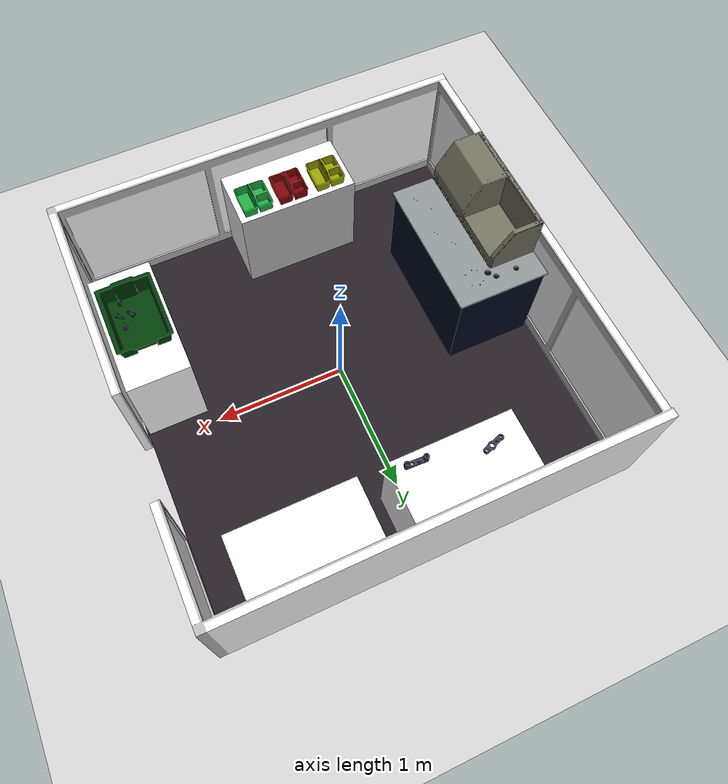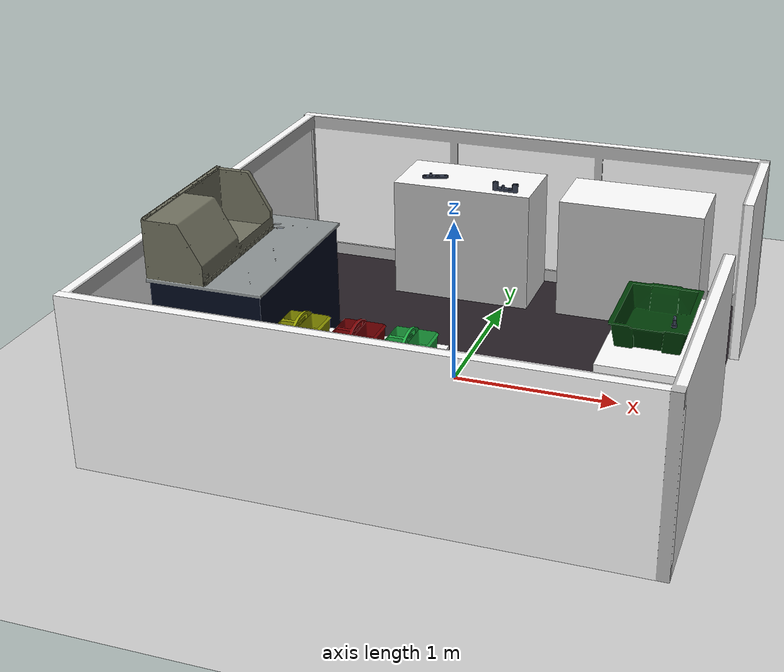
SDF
<?xml version="1.0" ?>
<sdf version="1.4">
  <world name="default">

    <include>
      <uri>model://ground_plane</uri>
      <pose>0 0 -0.005 0 0 0</pose>
    </include>

    <include>
      <uri>model://fetchit_arena</uri>
      <name>fetchit_arena1</name>
      <pose>0 0 0 0 0 0</pose>
    </include>

    <include>
      <uri>model://fetchit_table_em</uri>
      <name>fetchit_table_em1</name>
      <pose>1.28714 -0.565 0.0 0 0 -1.57</pose>
    </include>

    <include>
        <uri>model://shunk_machine</uri>
        <name>schunk_machine</name>
        <pose>-1.16773 -0.3 0 0 0 0</pose>
    </include>

    <include>
      <uri>model://fetchit_table_sick</uri>
      <name>fetchit_table_sick1</name>
      <pose>-0.305 1.28179 0.0 0 0 0</pose>
    </include>

    <include>
      <uri>model://fetchit_table_fetch</uri>
      <name>fetchit_table_fetch1</name>
      <pose>-0.135 -1.28849 0.0 0 0 3.1416</pose>
    </include>

    <include>
      <uri>model://fetchit_table_theconstruct</uri>
      <name>fetchit_table_theconstruct1</name>
      <pose>0.815 1.28179 0.0 0 0 0</pose>
    </include>

    <include>
      <uri>model://caddy_green</uri>
      <name>caddy_green1</name>
      <pose>0.168355 -1.20441 0.826729 0 0 0</pose>
    </include>

    <include>
      <uri>model://caddy_red</uri>
      <name>caddy_red1</name>
      <pose>-0.113059 -1.20441 0.826729 0 0 0</pose>
    </include>

    <include>
      <uri>model://caddy_yellow</uri>
      <name>caddy_yellow1</name>
      <pose>-0.414898 -1.20441 0.826729 0 0 0</pose>
    </include>

    <include>
      <uri>model://screw_bin</uri>
      <name>screw_bin</name>
      <pose>1.273518 -0.580070 0.791994 0 0 -1.570000</pose>
    </include>
    <include>
      <uri>model://gearbox_bolt_grey</uri>
      <name>gearbox_bolt_grey3</name>
      <pose>1.350704 -0.754017 0.802789 0 0 -1.308124</pose>
    </include>
    <include>
      <uri>model://gearbox_bolt_grey</uri>
      <name>gearbox_bolt_grey5</name>
      <pose>1.370686 -0.549596 0.812789 0 0 0</pose>
    </include>
    <include>
      <uri>model://gearbox_bolt_grey</uri>
      <name>gearbox_bolt_grey11</name>
      <pose>1.288459 -0.626789 0.812789 2.170262 -1.334160 -0.036304</pose>
    </include>
    <include>
      <uri>model://gearbox_bolt_grey</uri>
      <name>gearbox_bolt_grey14</name>
      <pose>1.405032 -0.680078 0.812789 -2.169053 1.334241 0.204366</pose>
    </include>

    <include>
      <uri>model://gearbox_bottom_grey</uri>
      <name>gearbox_bottom_grey1</name>
      <pose>-0.024991 1.128376 0.784992 0 0 3.105351</pose>
    </include>
    <include>
      <uri>model://gearbox_top_grey</uri>
      <name>gearbox_top_grey2</name>
      <pose>-0.534968 1.220576 0.796855 -3.141591 -0.000002 0.323833</pose>
    </include>
    <light name='user_point_light_0' type='point'>
      <pose frame=''>1.0 1.0 3.5 0 0 0</pose>
      <diffuse>0.7 0.7 0.7 1</diffuse>
      <specular>0.1 0.1 0.1 1</specular>
      <attenuation>
        <range>10</range>
        <constant>0.5</constant>
        <linear>0.01</linear>
        <quadratic>0.001</quadratic>
      </attenuation>
      <cast_shadows>0</cast_shadows>
      <direction>0 0 -1</direction>
    </light>

    <light name='user_point_light_1' type='point'>
      <pose frame=''>-1.0 1.0 3.5 0 0 0</pose>
      <diffuse>0.7 0.7 0.7 1</diffuse>
      <specular>0.1 0.1 0.1 1</specular>
      <attenuation>
        <range>10</range>
        <constant>0.5</constant>
        <linear>0.01</linear>
        <quadratic>0.001</quadratic>
      </attenuation>
      <cast_shadows>0</cast_shadows>
      <direction>0 0 -1</direction>
    </light>

    <light name='user_point_light_2' type='point'>
      <pose frame=''>-1.0 -1.0 3.5 0 0 0</pose>
      <diffuse>0.7 0.7 0.7 1</diffuse>
      <specular>0.1 0.1 0.1 1</specular>
      <attenuation>
        <range>10</range>
        <constant>0.5</constant>
        <linear>0.01</linear>
        <quadratic>0.001</quadratic>
      </attenuation>
      <cast_shadows>0</cast_shadows>
      <direction>0 0 -1</direction>
    </light>

    <light name='user_point_light_3' type='point'>
      <pose frame=''>1.0 -1.0 3.5 0 0 0</pose>
      <diffuse>0.7 0.7 0.7 1</diffuse>
      <specular>0.1 0.1 0.1 1</specular>
      <attenuation>
        <range>10</range>
        <constant>0.5</constant>
        <linear>0.01</linear>
        <quadratic>0.001</quadratic>
      </attenuation>
      <cast_shadows>0</cast_shadows>
      <direction>0 0 -1</direction>
    </light>

  </world>
</sdf>

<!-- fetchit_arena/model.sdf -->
<sdf version='1.4'>
  <model name="fetchit_simple_env">
      <static>1</static>
      <link name='link'>
        <visual name='visual'>
          <geometry>
            <mesh>
              <uri>model://fetchit_arena/meshes/fetchit_arena1.dae</uri>
              <scale>1 1 1</scale>
            </mesh>
          </geometry>
        </visual>
        <collision name='collision'>
          <geometry>
            <mesh>
              <uri>model://fetchit_arena/meshes/fetchit_arena1.dae</uri>
              <scale>1 1 1</scale>
            </mesh>
          </geometry>
          <surface>
            <friction>
              <ode>
                <mu>30.0</mu>
                <mu2>30.0</mu2>
              </ode>
            </friction>
            <contact>
              <ode>
                <soft_cfm>0</soft_cfm>
    	          <soft_erp>0.2</soft_erp>
    	          <kp>1e+13</kp>
    	          <kd>1</kd>
    	          <max_vel>0.01</max_vel>
    	          <min_depth>0</min_depth>
              </ode>
            </contact>
          </surface>
        </collision>
        <velocity_decay>
          <linear>0.000000</linear>
          <angular>0.000000</angular>
        </velocity_decay>
        <self_collide>0</self_collide>
        <kinematic>0</kinematic>
        <gravity>1</gravity>
      </link>
  </model>
</sdf>

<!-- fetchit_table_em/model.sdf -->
<sdf version='1.4'>
  <model name="fetchit_table_em">
      <static>1</static>
      <link name='link'>
        <inertial>
          <mass>0.0592855</mass>
          <inertia>
            <ixx>2.31818050784e-05</ixx>
            <ixy>0.000000</ixy>
            <ixz>0.000000</ixz>
            <iyy>2.31851837098e-05</iyy>
            <iyz>0.000000</iyz>
            <izz>8.88944636856e-06</izz>
          </inertia>
        </inertial>
        <collision name='collision'>
          <geometry>
            <mesh>
              <uri>model://fetchit_table_em/meshes/simple_table.stl</uri>
              <scale>1 1 1</scale>
            </mesh>
          </geometry>
          <surface>
            <friction>
              <ode>
                <mu>30.0</mu>
                <mu2>30.0</mu2>
              </ode>
            </friction>
          </surface>
        </collision>
        <visual name='visual'>
          <geometry>
            <mesh>
              <uri>model://fetchit_table_em/meshes/table_EM.dae</uri>
              <scale>1 1 1</scale>
            </mesh>
          </geometry>
        </visual>
        <velocity_decay>
          <linear>0.000000</linear>
          <angular>0.000000</angular>
        </velocity_decay>
        <self_collide>0</self_collide>
        <kinematic>0</kinematic>
        <gravity>1</gravity>
      </link>
  </model>
</sdf>

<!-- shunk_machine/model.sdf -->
<sdf version='1.4'>
  <model name="shunk_machine">
      <static>1</static>
      <link name='link'>
        <inertial>
          <mass>0.0676998</mass>
          <inertia>
            <ixx>6.36046210549e-06</ixx>
            <ixy>0.000000</ixy>
            <ixz>0.000000</ixz>
            <iyy>7.70974202419e-05</iyy>
            <iyz>0.000000</iyz>
            <izz>7.84820892159e-05</izz>
          </inertia>
        </inertial>
        <collision name='collision'>
          <geometry>
            <mesh>
              <uri>model://shunk_machine/meshes/shunk_machine_nodoor_nolathe_collisions_simple.stl</uri>
              <scale>1 1 1</scale>
            </mesh>
          </geometry>
          <surface>
            <friction>
              <ode>
                <mu>30.0</mu>
                <mu2>30.0</mu2>
              </ode>
            </friction>
            <contact>
              <ode>
                <soft_cfm>0</soft_cfm>
    	          <soft_erp>0.2</soft_erp>
    	          <kp>1e+13</kp>
    	          <kd>1</kd>
    	          <max_vel>0.01</max_vel>
    	          <min_depth>0</min_depth>
              </ode>
            </contact>
          </surface>
        </collision>
        <visual name='visual'>
          <geometry>
            <mesh>
              <uri>model://shunk_machine/meshes/shunk_machine_nodoor_nolathe_v2.dae</uri>
              <scale>1 1 1</scale>
            </mesh>
          </geometry>
        </visual>
        <velocity_decay>
          <linear>0.000000</linear>
          <angular>0.000000</angular>
        </velocity_decay>
        <self_collide>0</self_collide>
        <kinematic>0</kinematic>
        <gravity>1</gravity>
      </link>
  </model>
</sdf>

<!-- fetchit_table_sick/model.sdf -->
<sdf version='1.4'>
  <model name="fetchit_table_sick">
      <static>1</static>
      <link name='link'>
        <inertial>
          <mass>0.0592855</mass>
          <inertia>
            <ixx>2.31818050784e-05</ixx>
            <ixy>0.000000</ixy>
            <ixz>0.000000</ixz>
            <iyy>2.31851837098e-05</iyy>
            <iyz>0.000000</iyz>
            <izz>8.88944636856e-06</izz>
          </inertia>
        </inertial>
        <collision name='collision'>
          <geometry>
            <mesh>
              <uri>model://fetchit_table_sick/meshes/simple_table.stl</uri>
              <scale>1 1 1</scale>
            </mesh>
          </geometry>
          <surface>
            <friction>
              <ode>
                <mu>30.0</mu>
                <mu2>30.0</mu2>
              </ode>
            </friction>
          </surface>
        </collision>
        <visual name='visual'>
          <geometry>
            <mesh>
              <uri>model://fetchit_table_sick/meshes/table_sick.dae</uri>
              <scale>1 1 1</scale>
            </mesh>
          </geometry>
        </visual>
        <velocity_decay>
          <linear>0.000000</linear>
          <angular>0.000000</angular>
        </velocity_decay>
        <self_collide>0</self_collide>
        <kinematic>0</kinematic>
        <gravity>1</gravity>
      </link>
  </model>
</sdf>

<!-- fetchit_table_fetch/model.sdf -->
<sdf version='1.4'>
  <model name="fetchit_table_fetch">
      <static>1</static>
      <link name='link'>
        <inertial>
          <mass>0.0592855</mass>
          <inertia>
            <ixx>2.31818050784e-05</ixx>
            <ixy>0.000000</ixy>
            <ixz>0.000000</ixz>
            <iyy>2.31851837098e-05</iyy>
            <iyz>0.000000</iyz>
            <izz>8.88944636856e-06</izz>
          </inertia>
        </inertial>
        <collision name='collision'>
          <geometry>
            <mesh>
              <uri>model://fetchit_table_fetch/meshes/simple_table.stl</uri>
              <scale>1 1 1</scale>
            </mesh>
          </geometry>
          <surface>
            <friction>
              <ode>
                <mu>30.0</mu>
                <mu2>30.0</mu2>
              </ode>
            </friction>
          </surface>
        </collision>
        <visual name='visual'>
          <geometry>
            <mesh>
              <uri>model://fetchit_table_fetch/meshes/table_fetch.dae</uri>
              <scale>1 1 1</scale>
            </mesh>
          </geometry>
        </visual>
        <velocity_decay>
          <linear>0.000000</linear>
          <angular>0.000000</angular>
        </velocity_decay>
        <self_collide>0</self_collide>
        <kinematic>0</kinematic>
        <gravity>1</gravity>
      </link>
  </model>
</sdf>

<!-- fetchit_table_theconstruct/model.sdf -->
<sdf version='1.4'>
  <model name="fetchit_table_theconstruct">
      <static>1</static>
      <link name='link'>
        <inertial>
          <mass>0.0592855</mass>
          <inertia>
            <ixx>2.31818050784e-05</ixx>
            <ixy>0.000000</ixy>
            <ixz>0.000000</ixz>
            <iyy>2.31851837098e-05</iyy>
            <iyz>0.000000</iyz>
            <izz>8.88944636856e-06</izz>
          </inertia>
        </inertial>
        <collision name='collision'>
          <geometry>
            <mesh>
              <uri>model://fetchit_table_theconstruct/meshes/simple_table.stl</uri>
              <scale>1 1 1</scale>
            </mesh>
          </geometry>
          <surface>
            <friction>
              <ode>
                <mu>30.0</mu>
                <mu2>30.0</mu2>
              </ode>
            </friction>
          </surface>
        </collision>
        <visual name='visual'>
          <geometry>
            <mesh>
              <uri>model://fetchit_table_theconstruct/meshes/table_theconstruct.dae</uri>
              <scale>1 1 1</scale>
            </mesh>
          </geometry>
        </visual>
        <velocity_decay>
          <linear>0.000000</linear>
          <angular>0.000000</angular>
        </velocity_decay>
        <self_collide>0</self_collide>
        <kinematic>0</kinematic>
        <gravity>1</gravity>
      </link>
  </model>
</sdf>

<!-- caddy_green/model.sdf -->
<sdf version='1.4'>
  <model name="caddy_green">
      <static>1</static>
      <link name='link'>
        <inertial>
          <mass>0.0680389</mass>
          <inertia>
            <ixx>0.00040636575898</ixx>
            <ixy>0.000000</ixy>
            <ixz>0.000000</ixz>
            <iyy>0.00040636575898</iyy>
            <iyz>0.000000</iyz>
            <izz>0.000625974918075</izz>
          </inertia>
        </inertial>
        <collision name='collision'>
          <geometry>
            <mesh>
              <uri>model://caddy_green/meshes/Romanoff_Small_Utility_Caddy_cof.stl</uri>
              <scale>1 1 1</scale>
            </mesh>
          </geometry>
          <surface>
            <friction>
              <ode>
                <mu>1.0</mu>
                <mu2>1.0</mu2>
              </ode>
            </friction>
          </surface>
        </collision>

        <visual name='visual'>
          <geometry>
            <mesh>
              <uri>model://caddy_green/meshes/Romanoff_Small_Utility_Caddy_cof_green.dae</uri>
              <scale>1 1 1</scale>
            </mesh>
          </geometry>
        </visual>
        <velocity_decay>
          <linear>0.000000</linear>
          <angular>0.000000</angular>
        </velocity_decay>
        <self_collide>0</self_collide>
        <kinematic>0</kinematic>
        <gravity>1</gravity>
      </link>
  </model>
</sdf>

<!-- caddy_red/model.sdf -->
<sdf version='1.4'>
  <model name="caddy_red">
      <static>1</static>
      <link name='link'>
        <inertial>
          <mass>0.0680389</mass>
          <inertia>
            <ixx>0.00040636575898</ixx>
            <ixy>0.000000</ixy>
            <ixz>0.000000</ixz>
            <iyy>0.00040636575898</iyy>
            <iyz>0.000000</iyz>
            <izz>0.000625974918075</izz>
          </inertia>
        </inertial>
        <collision name='collision'>
          <geometry>
            <mesh>
              <uri>model://caddy_red/meshes/Romanoff_Small_Utility_Caddy_cof.stl</uri>
              <scale>1 1 1</scale>
            </mesh>
          </geometry>
          <surface>
            <friction>
              <ode>
                <mu>1.0</mu>
                <mu2>1.0</mu2>
              </ode>
            </friction>
          </surface>
        </collision>

        <visual name='visual'>
          <geometry>
            <mesh>
              <uri>model://caddy_red/meshes/Romanoff_Small_Utility_Caddy_cof_red.dae</uri>
              <scale>1 1 1</scale>
            </mesh>
          </geometry>
        </visual>
        <velocity_decay>
          <linear>0.000000</linear>
          <angular>0.000000</angular>
        </velocity_decay>
        <self_collide>0</self_collide>
        <kinematic>0</kinematic>
        <gravity>1</gravity>
      </link>
  </model>
</sdf>

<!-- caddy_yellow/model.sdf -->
<sdf version='1.4'>
  <model name="caddy_yellow">
      <static>1</static>
      <link name='link'>
        <inertial>
          <mass>0.0680389</mass>
          <inertia>
            <ixx>0.00040636575898</ixx>
            <ixy>0.000000</ixy>
            <ixz>0.000000</ixz>
            <iyy>0.00040636575898</iyy>
            <iyz>0.000000</iyz>
            <izz>0.000625974918075</izz>
          </inertia>
        </inertial>
        <collision name='collision'>
          <geometry>
            <mesh>
              <uri>model://caddy_yellow/meshes/Romanoff_Small_Utility_Caddy_cof.stl</uri>
              <scale>1 1 1</scale>
            </mesh>
          </geometry>
          <surface>
            <friction>
              <ode>
                <mu>1.0</mu>
                <mu2>1.0</mu2>
              </ode>
            </friction>
          </surface>
        </collision>

        <visual name='visual'>
          <geometry>
            <mesh>
              <uri>model://caddy_yellow/meshes/Romanoff_Small_Utility_Caddy_cof_yellow.dae</uri>
              <scale>1 1 1</scale>
            </mesh>
          </geometry>
        </visual>
        <velocity_decay>
          <linear>0.000000</linear>
          <angular>0.000000</angular>
        </velocity_decay>
        <self_collide>0</self_collide>
        <kinematic>0</kinematic>
        <gravity>1</gravity>
      </link>
  </model>
</sdf>

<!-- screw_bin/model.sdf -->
<sdf version='1.4'>
  <model name="screw_bin">
      <static>0</static>
      <link name='link'>
        <inertial>
          <!-- Weight = 1.7lb -> 0.771107kg-->
          <mass>0.771107</mass>
          <inertia>
            <ixx>0.010364</ixx>
            <ixy>0.000000</ixy>
            <ixz>0.000000</ixz>
            <iyy>0.017619</iyy>
            <iyz>0.000000</iyz>
            <izz>0.025911</izz>
          </inertia>
        </inertial>
        <collision name='collision'>
          <geometry>
            <mesh>
              <uri>model://screw_bin/meshes/screw_bin.stl</uri>
              <scale>1 1 1</scale>
            </mesh>
          </geometry>
          <surface>
            <friction>
              <ode>
                <mu>30.0</mu>
                <mu2>30.0</mu2>
              </ode>
            </friction>
          </surface>
        </collision>
        <visual name='visual'>
          <geometry>
            <mesh>
              <uri>model://screw_bin/meshes/screw_bin.dae</uri>
              <scale>1 1 1</scale>
            </mesh>
          </geometry>
        </visual>
        <velocity_decay>
          <linear>0.000000</linear>
          <angular>0.000000</angular>
        </velocity_decay>
        <self_collide>0</self_collide>
        <kinematic>0</kinematic>
        <gravity>1</gravity>
      </link>
  </model>
</sdf>

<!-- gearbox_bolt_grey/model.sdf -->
<sdf version='1.4'>
  <model name="gearbox_bolt_grey">
      <static>0</static>
      <link name='link'>
        <inertial>
          <pose>0 0 0.030633 0 0 0</pose>
          <mass>0.0592855</mass>
          <inertia>
            <ixx>2.2977502034e-05</ixx>
            <ixy>0.000000</ixy>
            <ixz>0.000000</ixz>
            <iyy>2.29905352792e-05</iyy>
            <iyz>0.000000</iyz>
            <izz>8.87979175473e-06</izz>
          </inertia>
        </inertial>
        <collision name='collision'>
          <geometry>
            <mesh>
              <uri>model://gearbox_bolt_grey/meshes/gear_bolt_simple.stl</uri>
              <scale>1 1 1</scale>
            </mesh>
          </geometry>
          <surface>
            <friction>
              <ode>
                <mu>30.0</mu>
                <mu2>30.0</mu2>
              </ode>
            </friction>
          </surface>
        </collision>
        <visual name='visual'>
          <geometry>
            <mesh>
              <uri>model://gearbox_bolt_grey/meshes/screw_grey.dae</uri>
              <scale>1 1 1</scale>
            </mesh>
          </geometry>
        </visual>
        <velocity_decay>
          <linear>0.000000</linear>
          <angular>0.000000</angular>
        </velocity_decay>
        <self_collide>0</self_collide>
        <kinematic>0</kinematic>
        <gravity>1</gravity>
      </link>
  </model>
</sdf>

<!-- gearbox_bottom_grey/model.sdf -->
<sdf version='1.4'>
  <model name="gearbox_bottom_grey">
      <static>1</static>
      <link name='link'>
        <inertial>
          <pose>0 0 0.0261852 0 0 0</pose>
          <mass>0.3705614</mass>
          <inertia>
            <ixx>0.000131217258397</ixx>
            <ixy>0.000000</ixy>
            <ixz>0.000000</ixz>
            <iyy>0.000981017941434</iyy>
            <iyz>0.000000</iyz>
            <izz>0.000942847952626</izz>
          </inertia>
        </inertial>
        <collision name='collision'>
          <geometry>
            <mesh>
              <uri>model://gearbox_bottom_grey/meshes/gearbox_bottom_simple.stl</uri>
              <scale>1 1 1</scale>
            </mesh>
          </geometry>
          <surface>
            <friction>
              <ode>
                <mu>30.0</mu>
                <mu2>30.0</mu2>
              </ode>
            </friction>
          </surface>
        </collision>
        <visual name='visual'>
          <geometry>
            <mesh>
              <uri>model://gearbox_bottom_grey/meshes/gearBoxBottom_grey.dae</uri>
              <scale>1 1 1</scale>
            </mesh>
          </geometry>
        </visual>
        <velocity_decay>
          <linear>0.000000</linear>
          <angular>0.000000</angular>
        </velocity_decay>
        <self_collide>0</self_collide>
        <kinematic>0</kinematic>
        <gravity>1</gravity>
      </link>
  </model>
</sdf>

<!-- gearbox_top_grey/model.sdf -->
<sdf version='1.4'>
  <model name="gearbox_top_grey">
      <static>0</static>
      <link name='link'>
        <inertial>
          <pose>0 0 0 0 0 0</pose>
          <mass>0.2282587</mass>
          <inertia>
            <ixx>4.84526132205e-05</ixx>
            <ixy>0.000000</ixy>
            <ixz>0.000000</ixz>
            <iyy>0.000571913204992</iyy>
            <iyz>0.000000</iyz>
            <izz>0.000580776512074</izz>
          </inertia>
        </inertial>
        <collision name='collision'>
          <geometry>
            <mesh>
              <uri>model://gearbox_top_grey/meshes/gearBoxTop_v3.stl</uri>
              <scale>1 1 1</scale>
            </mesh>
          </geometry>
          <surface>
            <friction>
              <ode>
                <mu>30.0</mu>
                <mu2>30.0</mu2>
              </ode>
            </friction>
          </surface>
        </collision>
        <visual name='visual'>
          <geometry>
            <mesh>
              <uri>model://gearbox_top_grey/meshes/gearBoxTop_grey.dae</uri>
              <scale>1 1 1</scale>
            </mesh>
          </geometry>
        </visual>
        <velocity_decay>
          <linear>0.000000</linear>
          <angular>0.000000</angular>
        </velocity_decay>
        <self_collide>0</self_collide>
        <kinematic>0</kinematic>
        <gravity>1</gravity>
      </link>
  </model>
</sdf>
